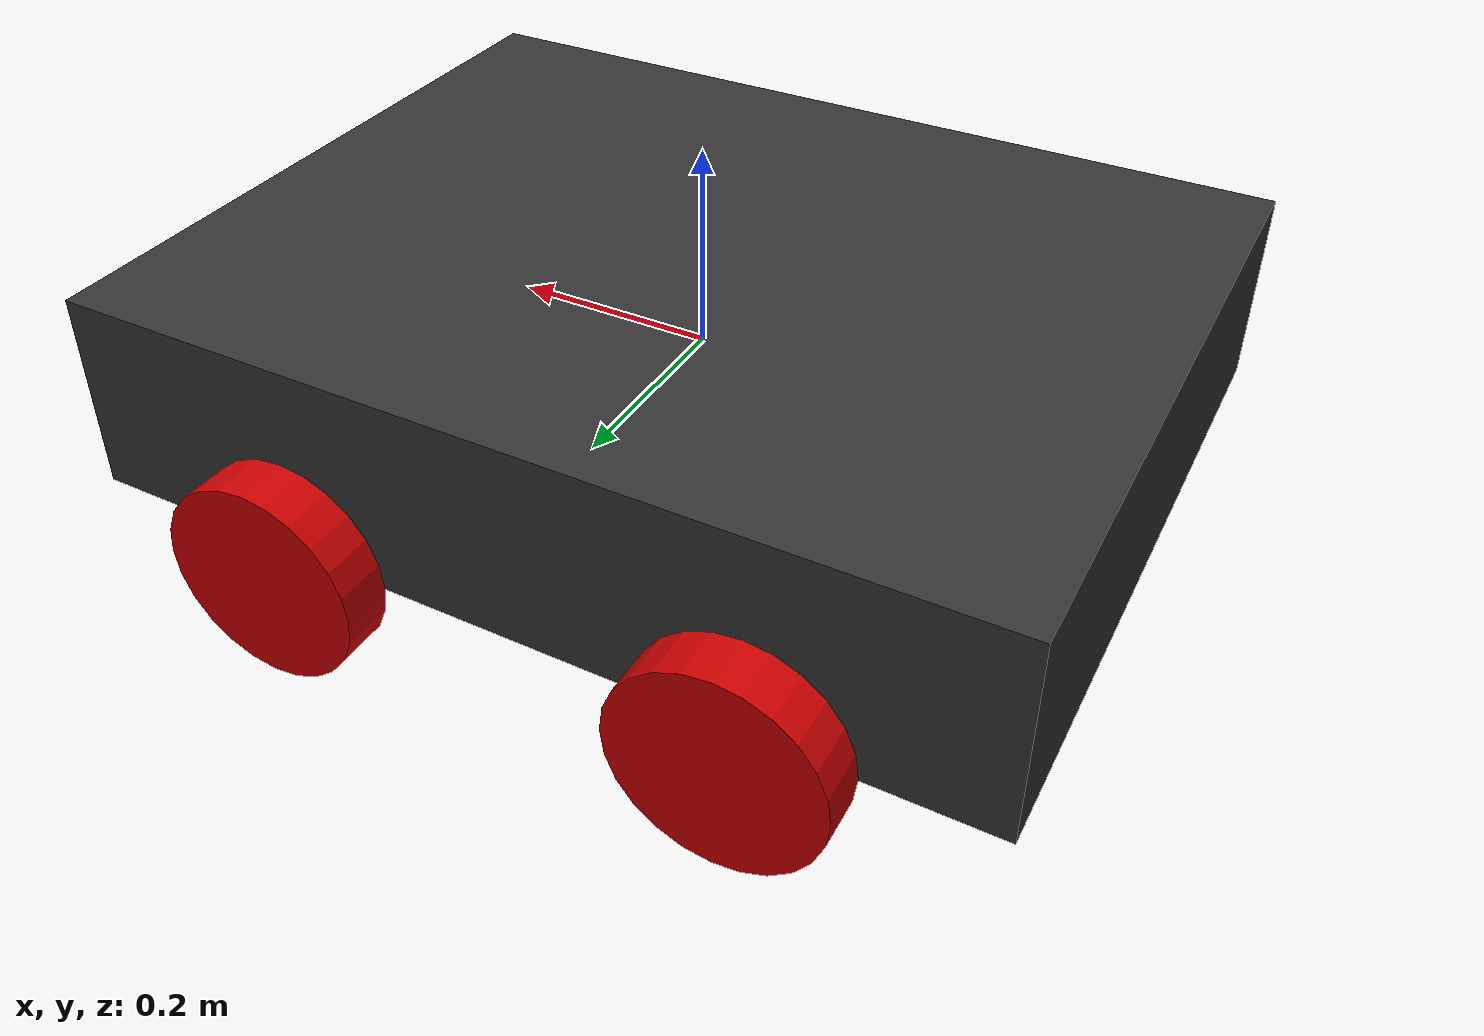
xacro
<?xml version="1.0"?>
<robot name="drivebot" xmlns:xacro="http://www.ros.org/wiki/xacro">

  <xacro:include filename="$(find drivebot_description)/urdf/materials.xacro" />
  <xacro:include filename="$(find drivebot_description)/urdf/macros.xacro" />

  <!-- X = front/back, Y = right/left, Z = up/down  -->
  <xacro:property name="bodyX" value="0.9" />
  <xacro:property name="bodyY" value="0.7" />
  <xacro:property name="bodyZ" value="0.2" />
  <xacro:property name="bodyMass" value="5" />

  <xacro:property name="wheelR" value="${0.1}" />
  <xacro:property name="wheelH" value="0.05" />
  <xacro:property name="wheelMass" value="1" />

  <xacro:property name="casterR" value="${(wheelR - bodyZ / 2) / 2}" />
  <xacro:property name="casterMass" value="${1}" />

  <link name="base_link" />

  <xacro:boxLink name="body" mass="${bodyMass}" x="${bodyX}" y="${bodyY}" z="${bodyZ}" color="orange" />
  <joint name="base_joint" type="fixed">
    <parent link="base_link" />
    <child link="body_link" />
    <origin xyz="0 0 0" rpy="0 0 0" />
  </joint>
  <gazebo reference="body_link">
    <material>Gazebo/Orange</material>
  </gazebo>

  <xacro:cylinderLink
      name="leftRearWheel" mass="${wheelMass}" radius="${wheelR}" height="${wheelH}" color="red" p ="${pi/2}" />
  <joint name="leftRearWheel_joint" type="continuous">
    <parent link="body_link" />
    <child link="leftRearWheel_link" />
    <origin xyz="${-bodyX/4} ${bodyY/2 + wheelH/2} ${-bodyZ/2}" rpy="0 0 ${pi/2}" />
  </joint>
  <xacro:jointTransmission name="leftRearWheel" />
  <gazebo reference="leftRearWheel_link">
    <material>Gazebo/Red</material>
    <mu1 value="1.0"/>
    <mu2 value="1.0"/>
    <kp value="10000000.0" />
    <kd value="1.0" />
  </gazebo>

  <xacro:cylinderLink
      name="rightRearWheel" mass="${wheelMass}" radius="${wheelR}" height="${wheelH}" color="green" p ="${pi/2}"/>
  <joint name="rightRearWheel_joint" type="continuous">
    <parent link="body_link" />
    <child link="rightRearWheel_link" />
    <origin xyz="${-bodyX/4} ${-bodyY/2 - wheelH/2} ${-bodyZ/2}" rpy="0 0 ${pi/2}" />
  </joint>
  <xacro:jointTransmission name="rightRearWheel" />
  <gazebo reference="rightRearWheel_link">
    <material>Gazebo/Green</material>
    <mu1 value="1.0"/>
    <mu2 value="1.0"/>
    <kp value="10000000.0" />
    <kd value="1.0" />
  </gazebo>

  <xacro:cylinderLink
      name="leftFrontWheel" mass="${wheelMass}" radius="${wheelR}" height="${wheelH}" color="red" p ="${pi/2}" />
  <joint name="leftFrontWheel_joint" type="continuous">
    <parent link="body_link" />
    <child link="leftFrontWheel_link" />
    <origin xyz="${bodyX/4} ${bodyY/2 + wheelH/2} ${-bodyZ/2}" rpy="0 0 ${pi/2}" />
  </joint>
  <xacro:jointTransmission name="leftFrontWheel" />
  <gazebo reference="leftFrontWheel_link">
    <material>Gazebo/Red</material>
    <mu1 value="1.0"/>
    <mu2 value="1.0"/>
    <kp value="10000000.0" />
    <kd value="1.0" />
  </gazebo>

  <xacro:cylinderLink
      name="rightFrontWheel" mass="${wheelMass}" radius="${wheelR}" height="${wheelH}" color="green" p ="${pi/2}"/>
  <joint name="rightFrontWheel_joint" type="continuous">
    <parent link="body_link" />
    <child link="rightFrontWheel_link" />
    <origin xyz="${bodyX/4} ${-bodyY/2 - wheelH/2} ${-bodyZ/2}" rpy="0 0 ${pi/2}" />
  </joint>
  <xacro:jointTransmission name="rightFrontWheel" />
  <gazebo reference="rightFrontWheel_link">
    <material>Gazebo/Green</material>
    <mu1 value="1.0"/>
    <mu2 value="1.0"/>
    <kp value="10000000.0" />
    <kd value="1.0" />
  </gazebo>

  <gazebo>
    <plugin name="imu_plugin" filename="libgazebo_ros_imu.so">
      <alwaysOn>true</alwaysOn>
      <updateRate>100.0</updateRate>
      <bodyName>base_link</bodyName>
      <topicName>imu</topicName>
      <serviceName>imu_service</serviceName>
      <gaussianNoise>0.0001</gaussianNoise>
    </plugin>

    <plugin name="gps_plugin" filename="libhector_gazebo_ros_gps.so">
      <alwaysOn>true</alwaysOn>
      <updateRate>1.0</updateRate>
      <bodyName>base_link</bodyName>
      <topicName>fix</topicName>
      <frameId>base_link</frameId>
      <gaussianNoise>0.775</gaussianNoise>
    </plugin>

    <plugin name="base_link_p3d_plugin" filename="libgazebo_ros_p3d.so">
      <alwaysOn>true</alwaysOn>
      <updateRate>10.0</updateRate>
      <bodyName>base_link</bodyName>
      <topicName>odometry/ground_truth/map</topicName>
      <frameName>map</frameName>
      <gaussianNoise>0.0</gaussianNoise>
    </plugin>
  </gazebo>

  <!-- ros_control plugin -->
  <gazebo>
    <plugin name="gazebo_ros_control" filename="libgazebo_ros_control.so">
      <robotNamespace>/drivebot</robotNamespace>
      <robotSimType>gazebo_ros_control/DefaultRobotHWSim</robotSimType>
    </plugin>
  </gazebo>

</robot>

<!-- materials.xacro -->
<robot name="drivebot" xmlns:xacro="http://www.ros.org/wiki/xacro">
  <material name="black">
    <color rgba="0.0 0.0 0.0 1.0"/>
  </material>

  <material name="blue">
    <color rgba="0.0 0.0 0.8 1.0"/>
  </material>

  <material name="green">
    <color rgba="0.0 0.8 0.0 1.0"/>
  </material>

  <material name="grey">
    <color rgba="0.2 0.2 0.2 1.0"/>
  </material>

  <material name="orange">
    <color rgba="${255/255} ${108/255} ${10/255} 1.0"/>
  </material>

  <material name="brown">
    <color rgba="${222/255} ${207/255} ${195/255} 1.0"/>
  </material>

  <material name="red">
    <color rgba="0.8 0.0 0.0 1.0"/>
  </material>

  <material name="white">
    <color rgba="1.0 1.0 1.0 1.0"/>
  </material>
</robot>

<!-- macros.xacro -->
<robot name="drivebot" xmlns:xacro="http://www.ros.org/wiki/xacro">

  <xacro:macro name="cylinder_inertia" params="mass r h">
    <inertia  ixx="${mass*(3*r*r+h*h)/12}" ixy = "0" ixz = "0"
              iyy="${mass*(3*r*r+h*h)/12}" iyz = "0"
              izz="${mass*r*r/2}"
    />
  </xacro:macro>

  <xacro:macro name="box_inertia" params="mass x y z">
    <inertia  ixx="${mass*(y*y+z*z)/12}" ixy = "0" ixz = "0"
              iyy="${mass*(x*x+z*z)/12}" iyz = "0"
              izz="${mass*(x*x+z*z)/12}"
    />
  </xacro:macro>

  <xacro:macro name="sphere_inertia" params="mass r">
    <inertia  ixx="${2*mass*r*r/5}" ixy = "0" ixz = "0"
              iyy="${2*mass*r*r/5}" iyz = "0"
              izz="${2*mass*r*r/5}"
    />
  </xacro:macro>

  <xacro:macro name="boxLink" params="name mass x y z color:=grey">
    <link name="${name}_link">
      <inertial>
        <origin xyz="0 0 0" rpy="0 0 0"/>
        <mass value="${mass}"/>
        <xacro:box_inertia mass="${mass}" x="${x}" y="${y}" z="${z}"/>
      </inertial>

      <collision>
        <origin xyz="0 0 0" rpy="0 0 0" />
        <geometry>
          <box size="${x} ${y} ${z}" />
        </geometry>
      </collision>

      <visual>
        <origin xyz="0 0 0" rpy="0 0 0"/>
        <geometry>
          <box size="${x} ${y} ${z}"/>
        </geometry>
        <material name="grey"/>
      </visual>
    </link>
  </xacro:macro>

  <xacro:macro name="cylinderLink" params="name mass radius height r:=0 p:=0 y:=0 color:=grey">
    <link name="${name}_link">
      <inertial>
        <origin xyz="0 0 0" rpy="${r} ${p} ${y}"/>
        <mass value="${mass}"/>
        <xacro:cylinder_inertia mass="${mass}" r="${radius}" h="${height}"/>
      </inertial>

      <collision>
        <origin xyz="0 0 0" rpy="${r} ${p} ${y}"/>
        <geometry>
          <cylinder radius="${radius}" length="${height}"/>
        </geometry>
      </collision>

      <visual>
        <origin xyz="0 0 0" rpy="${r} ${p} ${y}"/>
        <geometry>
          <cylinder radius="${radius}" length="${height}"/>
        </geometry>
        <material name="${color}"/>
      </visual>
    </link>
  </xacro:macro>

  <xacro:macro name="sphereLink" params="name mass r color:=grey">
    <link name="${name}_link">
      <inertial>
        <origin xyz="0 0 0" rpy="0 0 0" />
        <mass value="${mass}" />
        <xacro:sphere_inertia mass="${mass}" r="${r}" />
      </inertial>

      <collision>
        <origin xyz="0 0 0" rpy="0 0 0" />
        <geometry>
          <sphere radius="${r}" />
        </geometry>
      </collision>

      <visual>
        <origin xyz="0 0 0" rpy="0 0 0"/>
        <geometry>
          <sphere radius="${r}"/>
        </geometry>
        <material name="${color}"/>
      </visual>
    </link>
  </xacro:macro>

  <xacro:macro name="jointTransmission" params="name reduction:=1">
    <transmission name="${name}_transmission">
      <type>transmission_interface/SimpleTransmission</type>
      <joint name="${name}_joint">
        <hardwareInterface>hardware_interface/VelocityJointInterface</hardwareInterface>
      </joint>
      <actuator name="${name}_servo">
        <mechanicalReduction>${reduction}</mechanicalReduction>
      </actuator>
    </transmission>
  </xacro:macro>
</robot>
